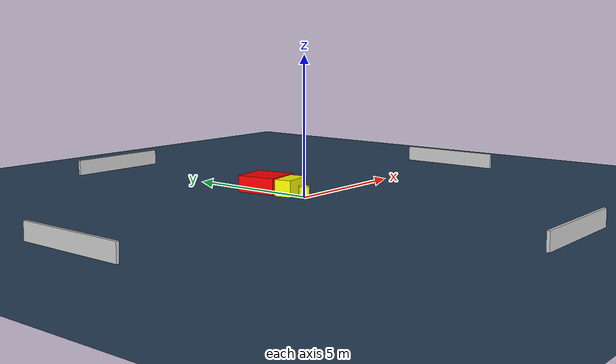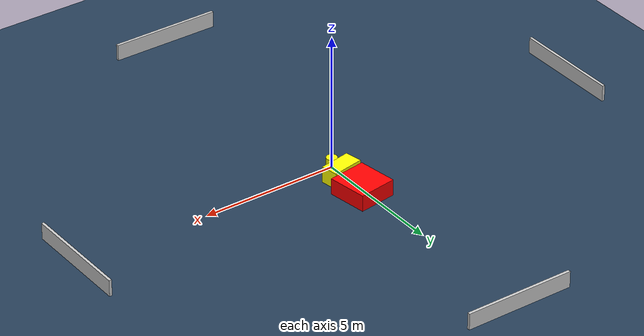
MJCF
<?xml version="1.0" ?>
<mujoco model="generated_environment">
  <option timestep="0.01" integrator="RK4" cone="elliptic"/>
  <default>
    <geom density="1"/>
  </default>
  <asset>
    <texture builtin="gradient" height="3072" name="skybox" rgb1="0.3 0.5 0.7" rgb2="0 0 0" type="skybox" width="512"/>
    <texture builtin="checker" height="300" name="groundplane" rgb1="0.2 0.3 0.4" rgb2="0.1 0.2 0.3" type="2d" width="300"/>
    <material name="groundplane" reflectance="0.2" texrepeat="5 5" texture="groundplane"/>
  </asset>
  <worldbody>
    <light dir="0 0 -1" directional="true" pos="0 0 1.5"/>
    <geom condim="3" friction="0.5 0.005 0.001" material="groundplane" name="floor" pos="0 0 0" size="0 0 0.05" type="plane"/>
    <body name="walls">
      <geom name="wall_1" condim="4" pos="-10.0 0.0 0.3" rgba="0.800000011920929 0.800000011920929 0.800000011920929 1.0" size="0.05 2.0 0.3" type="box"/>
      <geom name="wall_2" condim="4" pos="10.0 0.0 0.3" rgba="0.800000011920929 0.800000011920929 0.800000011920929 1.0" size="0.05 2.0 0.3" type="box"/>
      <geom name="wall_3" condim="4" pos="0.0 -10.0 0.3" rgba="0.800000011920929 0.800000011920929 0.800000011920929 1.0" size="2.0 0.05 0.3" type="box"/>
      <geom name="wall_4" condim="4" pos="0.0 10.0 0.3" rgba="0.800000011920929 0.800000011920929 0.800000011920929 1.0" size="2.0 0.05 0.3" type="box"/>
    </body>
    <body name="robot">
      <joint name="joint_x" type="slide" pos="0 0 0" axis="1 0 0"/>
      <joint name="joint_y" type="slide" pos="0 0 0" axis="0 1 0"/>
      <geom name="robot" type="cylinder" pos="0.0 0.0 0.2" size="0.2 0.2 0.0" mass="5.0" friction="1.0 0.005 0.0001" condim="4" rgba="1.0 1.0 0.0 1.0"/>
    </body>
    <body name="obstacle_1_movable">
      <geom name="obstacle_1_movable" condim="4" pos="0.15410924971282344 0.7490908393220611 0.3" euler="0 0 100.76086106604693" friction="0.0 0.005 0.001" rgba="1.0 1.0 0.0 1.0" size="0.313102728676535 0.584636343951245 0.3" type="box" mass="0.1"/>
      <joint type="free"/>
    </body>
    <body name="obstacle_2_static">
      <geom name="obstacle_2_static" condim="4" pos="0.15740605983750766 1.919797069065816 0.3" euler="0 0 98.5994118193309" friction="0.0 0.005 0.001" rgba="1.0 0.0 0.0 1.0" size="0.7292155522240242 0.7030355571733429 0.3" type="box"/>
    </body>
  </worldbody>
  <actuator>
    <motor name="actuator_x" joint="joint_x" gear="1" ctrlrange="-1 1"/>
    <motor name="actuator_y" joint="joint_y" gear="1" ctrlrange="-1 1"/>
  </actuator>
</mujoco>
